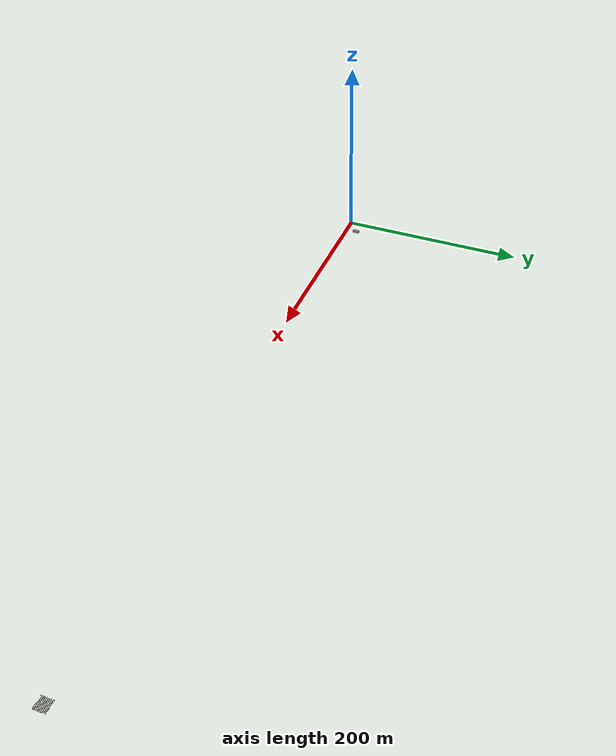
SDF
<?xml version="1.0" ?>
<sdf version="1.6">
    <model name="OFICIAL_CILINDRO">
        <pose>0 0 0.5 0 0 0</pose>
        <static>true</static>
        <link name="link">
            <collision name="collision">
                <geometry>
                    <mesh>
                        <uri>model://OFICIAL_CILINDRO/meshes/cilindro_oficial.obj</uri>
                        <scale>3 3 3</scale>
                    </mesh>
                </geometry>
            </collision>
            <visual name="visual">
                <geometry>
                    <mesh>
                        <uri>model://OFICIAL_CILINDRO/meshes/cilindro_oficial.obj</uri>
                        <scale>3 3 3</scale>
                    </mesh>
                </geometry>
            </visual>
        </link>
    </model>
</sdf>
